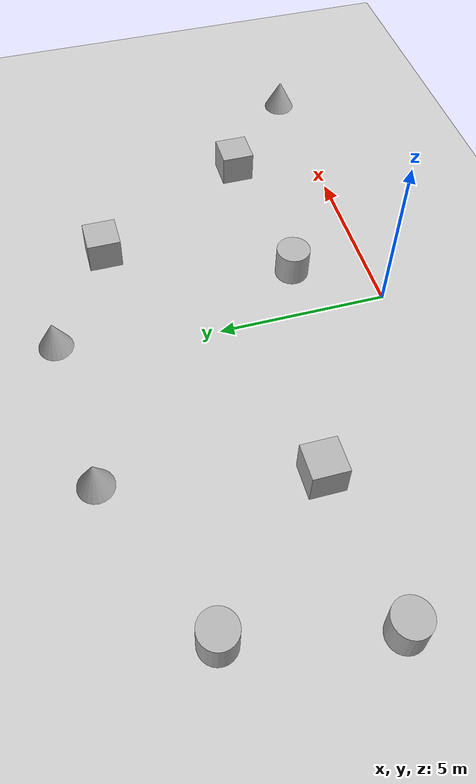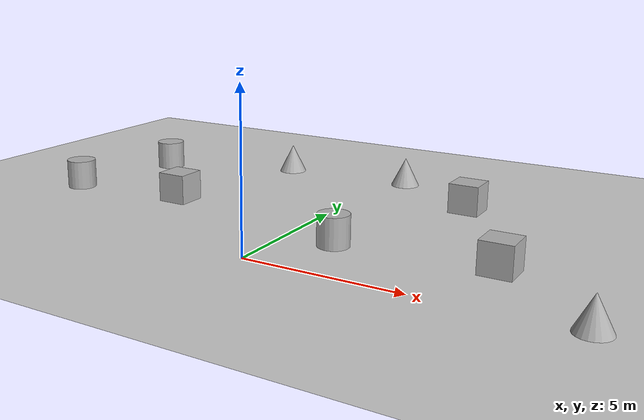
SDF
<sdf version="1.10">
 <world name="ackermann_steering">
  <model name="ground_plane">
   <static>true</static>
   <link name="link">
    <collision name="collision">
     <geometry><plane><normal>0 0 1</normal><size>100 100</size></plane></geometry>
     <surface>
      <friction>
       <ode><mu>50</mu></ode>
       <bullet><friction>1</friction><rolling_friction>0.10000000000000001</rolling_friction></bullet>
      </friction>
     </surface>
    </collision>
    <visual name="visual">
     <geometry><plane><normal>0 0 1</normal><size>100 100</size></plane></geometry>
     <material>
      <ambient>0.800000012 0.800000012 0.800000012 1</ambient>
      <diffuse>0.800000012 0.800000012 0.800000012 1</diffuse>
      <specular>0.800000012 0.800000012 0.800000012 1</specular>
     </material>
    </visual>
    <inertial>
     <mass>1</mass>
     <inertia><ixx>1</ixx><ixy>0</ixy><ixz>0</ixz><iyy>1</iyy><iyz>0</iyz><izz>1</izz></inertia>
    </inertial>
   </link>
  </model>
  <model name="cylinder">
   <pose>1.6727769428352461 2.2972520173440598 0.5 0 0 0</pose>
   <link name="cylinder_link">
    <inertial>
     <inertia>
      <ixx>0.14580000000000001</ixx>
      <ixy>0</ixy>
      <ixz>0</ixz>
      <iyy>0.14580000000000001</iyy>
      <iyz>0</iyz>
      <izz>0.125</izz>
     </inertia>
     <mass>1</mass>
    </inertial>
    <collision name="cylinder_collision">
     <geometry><cylinder><radius>0.5</radius><length>1</length></cylinder></geometry>
    </collision>
    <visual name="cylinder_visual">
     <geometry><cylinder><radius>0.5</radius><length>1</length></cylinder></geometry>
     <material>
      <ambient>0.300000012 0.300000012 0.300000012 1</ambient>
      <diffuse>0.699999988 0.699999988 0.699999988 1</diffuse>
      <specular>1 1 1 1</specular>
     </material>
    </visual>
   </link>
   <static>false</static>
  </model>
  <model name="box">
   <pose>6.5259838283032163 2.7324997870297492 0.5 0 0 0</pose>
   <link name="box_link">
    <inertial>
     <inertia><ixx>0.16666</ixx><ixy>0</ixy><ixz>0</ixz><iyy>0.16666</iyy><iyz>0</iyz><izz>0.16666</izz></inertia>
     <mass>1</mass>
    </inertial>
    <collision name="box_collision"><geometry><box><size>1 1 1</size></box></geometry></collision>
    <visual name="box_visual">
     <geometry><box><size>1 1 1</size></box></geometry>
     <material>
      <ambient>0.300000012 0.300000012 0.300000012 1</ambient>
      <diffuse>0.699999988 0.699999988 0.699999988 1</diffuse>
      <specular>1 1 1 1</specular>
     </material>
    </visual>
   </link>
   <static>false</static>
  </model>
  <model name="box_0">
   <pose>3.798408486799433 7.695015307157381 0.5 0 0 0</pose>
   <link name="box_link">
    <inertial>
     <inertia><ixx>0.16666</ixx><ixy>0</ixy><ixz>0</ixz><iyy>0.16666</iyy><iyz>0</iyz><izz>0.16666</izz></inertia>
     <mass>1</mass>
    </inertial>
    <collision name="box_collision"><geometry><box><size>1 1 1</size></box></geometry></collision>
    <visual name="box_visual">
     <geometry><box><size>1 1 1</size></box></geometry>
     <material>
      <ambient>0.300000012 0.300000012 0.300000012 1</ambient>
      <diffuse>0.699999988 0.699999988 0.699999988 1</diffuse>
      <specular>1 1 1 1</specular>
     </material>
    </visual>
   </link>
   <static>false</static>
  </model>
  <model name="cone">
   <pose>9.5409399662853644 0.15346165525937649 0.5 0 0 0</pose>
   <link name="cone_link">
    <inertial>
     <inertia>
      <ixx>0.074999999999999997</ixx>
      <ixy>0</ixy>
      <ixz>0</ixz>
      <iyy>0.074999999999999997</iyy>
      <iyz>0</iyz>
      <izz>0.074999999999999997</izz>
     </inertia>
     <mass>1</mass>
    </inertial>
    <collision name="cone_collision">
     <geometry><cone><radius>0.5</radius><length>1</length></cone></geometry>
    </collision>
    <visual name="cone_visual">
     <geometry><cone><radius>0.5</radius><length>1</length></cone></geometry>
     <material>
      <ambient>0.300000012 0.300000012 0.300000012 1</ambient>
      <diffuse>0.699999988 0.699999988 0.699999988 1</diffuse>
      <specular>1 1 1 1</specular>
     </material>
    </visual>
   </link>
   <static>false</static>
  </model>
  <model name="cone_0">
   <pose>-3.9110089726867887 9.3159533436747015 0.5 0 0 0</pose>
   <link name="cone_link">
    <inertial>
     <inertia>
      <ixx>0.074999999999999997</ixx>
      <ixy>0</ixy>
      <ixz>0</ixz>
      <iyy>0.074999999999999997</iyy>
      <iyz>0</iyz>
      <izz>0.074999999999999997</izz>
     </inertia>
     <mass>1</mass>
    </inertial>
    <collision name="cone_collision">
     <geometry><cone><radius>0.5</radius><length>1</length></cone></geometry>
    </collision>
    <visual name="cone_visual">
     <geometry><cone><radius>0.5</radius><length>1</length></cone></geometry>
     <material>
      <ambient>0.300000012 0.300000012 0.300000012 1</ambient>
      <diffuse>0.699999988 0.699999988 0.699999988 1</diffuse>
      <specular>1 1 1 1</specular>
     </material>
    </visual>
   </link>
   <static>false</static>
  </model>
  <model name="cone_1">
   <pose>0.6990985375773171 9.6405452144438328 0.5 0 0 0</pose>
   <link name="cone_link">
    <inertial>
     <inertia>
      <ixx>0.074999999999999997</ixx>
      <ixy>0</ixy>
      <ixz>0</ixz>
      <iyy>0.074999999999999997</iyy>
      <iyz>0</iyz>
      <izz>0.074999999999999997</izz>
     </inertia>
     <mass>1</mass>
    </inertial>
    <collision name="cone_collision">
     <geometry><cone><radius>0.5</radius><length>1</length></cone></geometry>
    </collision>
    <visual name="cone_visual">
     <geometry><cone><radius>0.5</radius><length>1</length></cone></geometry>
     <material>
      <ambient>0.300000012 0.300000012 0.300000012 1</ambient>
      <diffuse>0.699999988 0.699999988 0.699999988 1</diffuse>
      <specular>1 1 1 1</specular>
     </material>
    </visual>
   </link>
   <static>false</static>
  </model>
  <model name="cylinder_0">
   <pose>-8.438978953922522 7.3933600119696976 0.5 0 0 0</pose>
   <link name="cylinder_link">
    <inertial>
     <inertia>
      <ixx>0.14580000000000001</ixx>
      <ixy>0</ixy>
      <ixz>0</ixz>
      <iyy>0.14580000000000001</iyy>
      <iyz>0</iyz>
      <izz>0.125</izz>
     </inertia>
     <mass>1</mass>
    </inertial>
    <collision name="cylinder_collision">
     <geometry><cylinder><radius>0.5</radius><length>1</length></cylinder></geometry>
    </collision>
    <visual name="cylinder_visual">
     <geometry><cylinder><radius>0.5</radius><length>1</length></cylinder></geometry>
     <material>
      <ambient>0.300000012 0.300000012 0.300000012 1</ambient>
      <diffuse>0.699999988 0.699999988 0.699999988 1</diffuse>
      <specular>1 1 1 1</specular>
     </material>
    </visual>
   </link>
   <static>false</static>
  </model>
  <model name="cylinder_1">
   <pose>-9.2973590620690327 3.2821722918342924 0.5 0 0 0</pose>
   <link name="cylinder_link">
    <inertial>
     <inertia>
      <ixx>0.14580000000000001</ixx>
      <ixy>0</ixy>
      <ixz>0</ixz>
      <iyy>0.14580000000000001</iyy>
      <iyz>0</iyz>
      <izz>0.125</izz>
     </inertia>
     <mass>1</mass>
    </inertial>
    <collision name="cylinder_collision">
     <geometry><cylinder><radius>0.5</radius><length>1</length></cylinder></geometry>
    </collision>
    <visual name="cylinder_visual">
     <geometry><cylinder><radius>0.5</radius><length>1</length></cylinder></geometry>
     <material>
      <ambient>0.300000012 0.300000012 0.300000012 1</ambient>
      <diffuse>0.699999988 0.699999988 0.699999988 1</diffuse>
      <specular>1 1 1 1</specular>
     </material>
    </visual>
   </link>
   <static>false</static>
  </model>
  <model name="box_4">
   <pose>-5.1539472970088536 3.7802632626135937 0.5 0 0 0</pose>
   <link name="box_link">
    <inertial>
     <inertia><ixx>0.16666</ixx><ixy>0</ixy><ixz>0</ixz><iyy>0.16666</iyy><iyz>0</iyz><izz>0.16666</izz></inertia>
     <mass>1</mass>
    </inertial>
    <collision name="box_collision"><geometry><box><size>1 1 1</size></box></geometry></collision>
    <visual name="box_visual">
     <geometry><box><size>1 1 1</size></box></geometry>
     <material>
      <ambient>0.300000012 0.300000012 0.300000012 1</ambient>
      <diffuse>0.699999988 0.699999988 0.699999988 1</diffuse>
      <specular>1 1 1 1</specular>
     </material>
    </visual>
   </link>
   <static>false</static>
  </model>
 </world>
</sdf>
